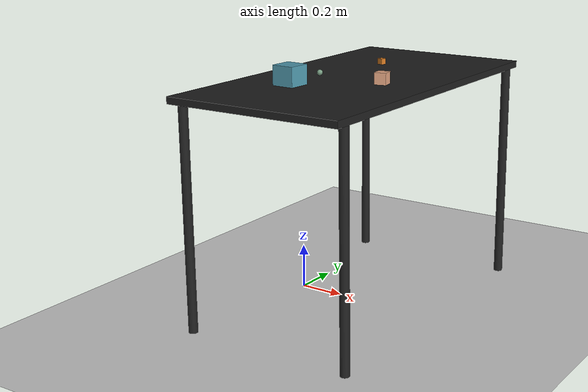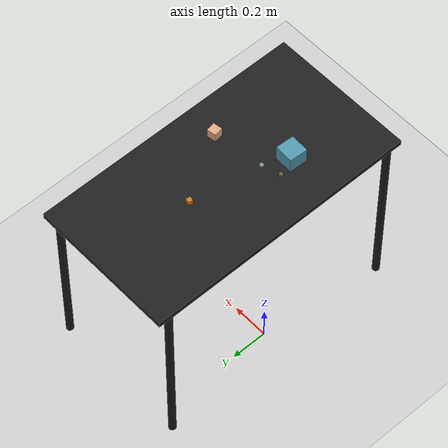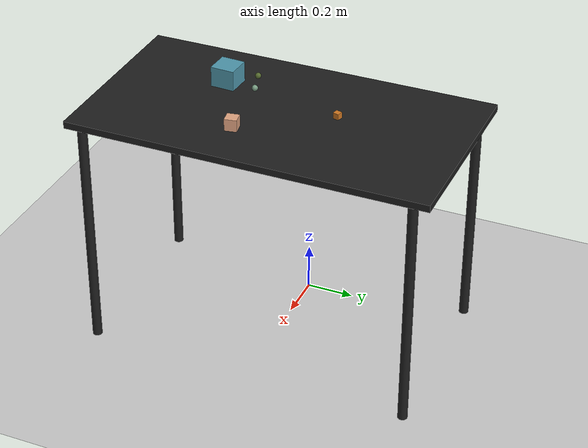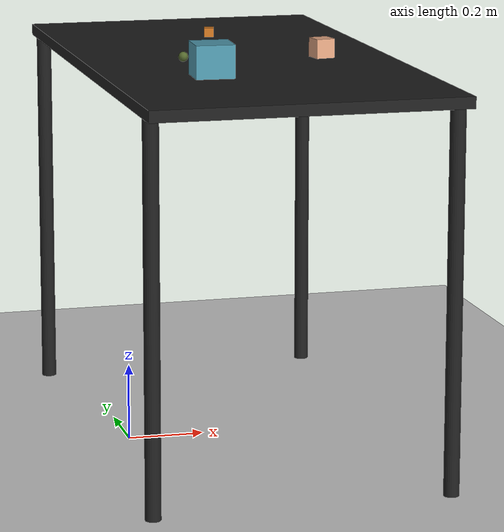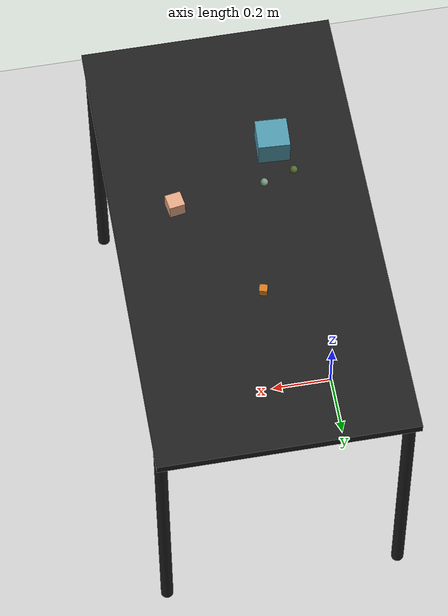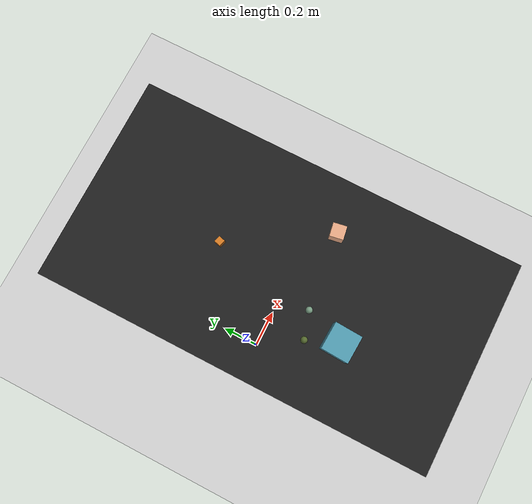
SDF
<?xml version="1.0" ?>
<sdf version="1.6">
  <world name="arm_world">
    <plugin filename="gz-sim-physics-system" name="gz::sim::systems::Physics">
      <engine>
        <filename>libgz-physics-bullet-featherstone-plugin.so</filename>
      </engine>
    </plugin>
    <plugin filename="gz-sim-user-commands-system" name="gz::sim::systems::UserCommands"/>
    <plugin filename="gz-sim-scene-broadcaster-system" name="gz::sim::systems::SceneBroadcaster"/>
    <plugin filename="gz-sim-sensors-system" name="gz::sim::systems::Sensors">
      <render_engine>ogre2</render_engine>
    </plugin>
    <gravity>0.0 0.0 -9.8</gravity>
    <scene>
      <shadows>false</shadows>
    </scene>
    <gui>
      <camera name="user_camera">
        <pose>0.75 -0.75 1.4 0 0.29 2.21</pose>
      </camera>
    </gui>
    <include>
      <uri>https://fuel.gazebosim.org/1.0/OpenRobotics/models/Sun</uri>
    </include>
    <model name="table">
      <static>true</static>
      <include>
        <uri>model://table</uri>
      </include>
      <pose>0.29 0 0 0 0 1.5708</pose>
    </model>
    <model name="ground_plane">
      <static>true</static>
      <link name="link">
        <collision name="collision">
          <geometry>
            <plane>
              <normal>0 0 1</normal>
            </plane>
          </geometry>
          <surface>
            <friction>
              <ode>
                <mu>1.0</mu>
                <mu2>1.0</mu2>
              </ode>
            </friction>
          </surface>
        </collision>
        <visual name="visual">
          <geometry>
            <plane>
              <normal>0 0 1</normal>
              <size>100 100</size>
            </plane>
          </geometry>
          <material>
            <ambient>0.8 0.8 0.8 1</ambient>
            <diffuse>0.8 0.8 0.8 1</diffuse>
            <specular>0.8 0.8 0.8 1</specular>
          </material>
        </visual>
      </link>
    </model>
    <model name="cube_s_0">
      <pose>0.277 0.226 1.05 0 0 4.45</pose>
      <link name="cube_s_0_link">
        <collision name="cube_s_0_collision">
          <geometry>
            <box>
              <size>0.025 0.025 0.025</size>
            </box>
          </geometry>
        </collision>
        <visual name="cube_s_0_visual">
          <geometry>
            <box>
              <size>0.025 0.025 0.025</size>
            </box>
          </geometry>
          <material>
            <ambient>0.82 0.47 0.13 1</ambient>
            <diffuse>0.82 0.47 0.13 1</diffuse>
          </material>
        </visual>
        <velocity_decay>
          <linear>1</linear>
          <angular>1</angular>
        </velocity_decay>
      </link>
    </model>
    <model name="cube_l_1">
      <pose>0.155 -0.297 1.05 0 0 1.52</pose>
      <link name="cube_l_1_link">
        <collision name="cube_l_1_collision">
          <geometry>
            <box>
              <size>0.1 0.1 0.1</size>
            </box>
          </geometry>
        </collision>
        <visual name="cube_l_1_visual">
          <geometry>
            <box>
              <size>0.1 0.1 0.1</size>
            </box>
          </geometry>
          <material>
            <ambient>0.31 0.6 0.68 1</ambient>
            <diffuse>0.31 0.6 0.68 1</diffuse>
          </material>
        </visual>
        <velocity_decay>
          <linear>1</linear>
          <angular>1</angular>
        </velocity_decay>
      </link>
    </model>
    <model name="sphere_s_2">
      <pose>0.108 -0.185 1.05 0 0 2.31</pose>
      <link name="sphere_s_2_link">
        <collision name="sphere_s_2_collision">
          <geometry>
            <sphere>
              <radius>0.0125</radius>
            </sphere>
          </geometry>
        </collision>
        <visual name="sphere_s_2_visual">
          <geometry>
            <sphere>
              <radius>0.0125</radius>
            </sphere>
          </geometry>
          <material>
            <ambient>0.33 0.41 0.18 1</ambient>
            <diffuse>0.33 0.41 0.18 1</diffuse>
          </material>
        </visual>
        <velocity_decay>
          <linear>1</linear>
          <angular>1</angular>
        </velocity_decay>
      </link>
    </model>
    <model name="cube_m_3">
      <pose>0.491 -0.122 1.05 0 0 4.88</pose>
      <link name="cube_m_3_link">
        <collision name="cube_m_3_collision">
          <geometry>
            <box>
              <size>0.05 0.05 0.05</size>
            </box>
          </geometry>
        </collision>
        <visual name="cube_m_3_visual">
          <geometry>
            <box>
              <size>0.05 0.05 0.05</size>
            </box>
          </geometry>
          <material>
            <ambient>0.89 0.65 0.51 1</ambient>
            <diffuse>0.89 0.65 0.51 1</diffuse>
          </material>
        </visual>
        <velocity_decay>
          <linear>1</linear>
          <angular>1</angular>
        </velocity_decay>
      </link>
    </model>
    <model name="sphere_s_4">
      <pose>0.206 -0.155 1.05 0 0 2.8</pose>
      <link name="sphere_s_4_link">
        <collision name="sphere_s_4_collision">
          <geometry>
            <sphere>
              <radius>0.0125</radius>
            </sphere>
          </geometry>
        </collision>
        <visual name="sphere_s_4_visual">
          <geometry>
            <sphere>
              <radius>0.0125</radius>
            </sphere>
          </geometry>
          <material>
            <ambient>0.46 0.6 0.5 1</ambient>
            <diffuse>0.46 0.6 0.5 1</diffuse>
          </material>
        </visual>
        <velocity_decay>
          <linear>1</linear>
          <angular>1</angular>
        </velocity_decay>
      </link>
    </model>
  </world>
</sdf>

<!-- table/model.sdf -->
<sdf version="1.5">
  <model name="table">
    <static>true</static>
    <link name="link">
      <collision name="surface">
        <pose>0 0 1.0 0 0 0</pose>
        <geometry>
          <box>
            <size>1.5 0.8 0.03</size>
          </box>
        </geometry>
        <surface>
          <friction>
            <ode>
              <mu>0.6</mu>
              <mu2>0.6</mu2>
            </ode>
          </friction>
        </surface>
      </collision>
      <visual name="surface">
        <pose>0 0 1.0 0 0 0</pose>
        <geometry>
          <box>
            <size>1.5 0.8 0.03</size>
          </box>
        </geometry>
        <material>
          <script>
            <uri>file://media/materials/scripts/gazebo.material</uri>
            <name>Gazebo/Black</name>
          </script>
        </material>
      </visual>
      <collision name="front_left_leg">
        <pose>0.68 0.38 0.5 0 0 0</pose>
        <geometry>
          <cylinder>
            <radius>0.02</radius>
            <length>1.0</length>
          </cylinder>
        </geometry>
      </collision>
      <visual name="front_left_leg">
        <pose>0.68 0.38 0.5 0 0 0</pose>
        <geometry>
          <cylinder>
            <radius>0.02</radius>
            <length>1.0</length>
          </cylinder>
        </geometry>
        <material>
          <script>
            <uri>file://media/materials/scripts/gazebo.material</uri>
            <name>Gazebo/Black</name>
          </script>
        </material>
      </visual>
      <collision name="front_right_leg">
        <pose>0.68 -0.38 0.5 0 0 0</pose>
        <geometry>
          <cylinder>
            <radius>0.02</radius>
            <length>1.0</length>
          </cylinder>
        </geometry>
      </collision>
      <visual name="front_right_leg">
        <pose>0.68 -0.38 0.5 0 0 0</pose>
        <geometry>
          <cylinder>
            <radius>0.02</radius>
            <length>1.0</length>
          </cylinder>
        </geometry>
        <material>
          <script>
            <uri>file://media/materials/scripts/gazebo.material</uri>
            <name>Gazebo/Black</name>
          </script>
        </material>
      </visual>
      <collision name="back_right_leg">
        <pose>-0.68 -0.38 0.5 0 0 0</pose>
        <geometry>
          <cylinder>
            <radius>0.02</radius>
            <length>1.0</length>
          </cylinder>
        </geometry>
      </collision>
      <visual name="back_right_leg">
        <pose>-0.68 -0.38 0.5 0 0 0</pose>
        <geometry>
          <cylinder>
            <radius>0.02</radius>
            <length>1.0</length>
          </cylinder>
        </geometry>
        <material>
          <script>
            <uri>file://media/materials/scripts/gazebo.material</uri>
            <name>Gazebo/Black</name>
          </script>
        </material>
      </visual>
      <collision name="back_left_leg">
        <pose>-0.68 0.38 0.5 0 0 0</pose>
        <geometry>
          <cylinder>
            <radius>0.02</radius>
            <length>1.0</length>
          </cylinder>
        </geometry>
      </collision>
      <visual name="back_left_leg">
        <pose>-0.68 0.38 0.5 0 0 0</pose>
        <geometry>
          <cylinder>
            <radius>0.02</radius>
            <length>1.0</length>
          </cylinder>
        </geometry>
        <material>
          <script>
            <uri>file://media/materials/scripts/gazebo.material</uri>
            <name>Gazebo/Black</name>
          </script>
        </material>
      </visual>
    </link>
  </model>
</sdf>
